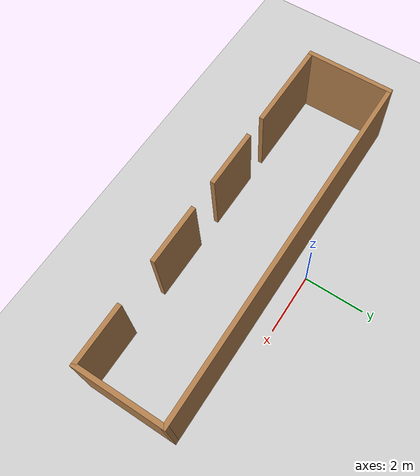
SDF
<sdf version="1.6">
 <world name="default">
  <light name="sun" type="directional">
   <pose>0 0 10 0 -0 0</pose>
   <diffuse>0.8 0.8 0.8 1</diffuse>
   <specular>0.2 0.2 0.2 1</specular>
   <attenuation>
    <range>1000</range>
    <constant>0.9</constant>
    <linear>0.01</linear>
    <quadratic>0.001</quadratic>
   </attenuation>
   <direction>-0.5 0.1 -0.9</direction>
  </light>
  <model name="ground_plane">
   <static>1</static>
   <link name="link">
    <collision name="collision">
     <geometry><plane><normal>0 0 1</normal><size>100 100</size></plane></geometry>
     <surface>
      <contact><collide_bitmask>65535</collide_bitmask></contact>
      <friction><ode><mu>100</mu><mu2>50</mu2></ode></friction>
     </surface>
    </collision>
    <visual name="visual">
     <cast_shadows>0</cast_shadows>
     <geometry><plane><normal>0 0 1</normal><size>100 100</size></plane></geometry>
     <material>
      <script><uri>file://media/materials/scripts/gazebo.material</uri><name>Gazebo/Grey</name></script>
     </material>
    </visual>
   </link>
  </model>
  <gravity>0 0 -9.8</gravity>
  <magnetic_field>6e-06 2.3e-05 -4.2e-05</magnetic_field>
  <atmosphere type="adiabatic"/>
  <physics name="default_physics" default="0" type="ode">
   <max_step_size>0.001</max_step_size>
   <real_time_factor>1</real_time_factor>
   <real_time_update_rate>1000</real_time_update_rate>
  </physics>
  <scene><ambient>0.4 0.4 0.4 1</ambient><background>0.7 0.7 0.7 1</background><shadows>1</shadows></scene>
  <audio><device>default</device></audio>
  <spherical_coordinates>
   <surface_model>EARTH_WGS84</surface_model>
   <latitude_deg>0</latitude_deg>
   <longitude_deg>0</longitude_deg>
   <elevation>0</elevation>
   <heading_deg>0</heading_deg>
  </spherical_coordinates>
  <model name="holes">
   <pose>0.096213 -2.05922 0 0 -0 0</pose>
   <link name="Wall_27">
    <collision name="Wall_27_Collision">
     <geometry><box><size>3 0.15 2.5</size></box></geometry>
     <pose>0 0 1.25 0 -0 0</pose>
    </collision>
    <visual name="Wall_27_Visual">
     <pose>0 0 1.25 0 -0 0</pose>
     <geometry><box><size>3 0.15 2.5</size></box></geometry>
     <material>
      <script><uri>file://media/materials/scripts/gazebo.material</uri><name>Gazebo/Wood</name></script>
      <ambient>1 1 1 1</ambient>
     </material>
     <meta><layer>0</layer></meta>
    </visual>
    <pose>-4.475 -1.425 0 0 -0 0</pose>
   </link>
   <link name="Wall_29">
    <collision name="Wall_29_Collision">
     <geometry><box><size>2 0.15 2.5</size></box></geometry>
     <pose>0 0 1.25 0 -0 0</pose>
    </collision>
    <visual name="Wall_29_Visual">
     <pose>0 0 1.25 0 -0 0</pose>
     <geometry><box><size>2 0.15 2.5</size></box></geometry>
     <material>
      <script><uri>file://media/materials/scripts/gazebo.material</uri><name>Gazebo/Wood</name></script>
      <ambient>1 1 1 1</ambient>
     </material>
     <meta><layer>0</layer></meta>
    </visual>
    <pose>-1.275 -1.425 0 0 -0 0</pose>
   </link>
   <link name="Wall_31">
    <collision name="Wall_31_Collision">
     <geometry><box><size>2 0.15 2.5</size></box></geometry>
     <pose>0 0 1.25 0 -0 0</pose>
    </collision>
    <visual name="Wall_31_Visual">
     <pose>0 0 1.25 0 -0 0</pose>
     <geometry><box><size>2 0.15 2.5</size></box></geometry>
     <material>
      <script><uri>file://media/materials/scripts/gazebo.material</uri><name>Gazebo/Wood</name></script>
      <ambient>1 1 1 1</ambient>
     </material>
     <meta><layer>0</layer></meta>
    </visual>
    <pose>1.675 -1.425 0 0 -0 0</pose>
   </link>
   <link name="Wall_33">
    <collision name="Wall_33_Collision">
     <geometry><box><size>2 0.15 2.5</size></box></geometry>
     <pose>0 0 1.25 0 -0 0</pose>
    </collision>
    <visual name="Wall_33_Visual">
     <pose>0 0 1.25 0 -0 0</pose>
     <geometry><box><size>2 0.15 2.5</size></box></geometry>
     <material>
      <script><uri>file://media/materials/scripts/gazebo.material</uri><name>Gazebo/Wood</name></script>
      <ambient>1 1 1 1</ambient>
     </material>
     <meta><layer>0</layer></meta>
    </visual>
    <pose>5.125 -1.425 0 0 -0 0</pose>
   </link>
   <link name="Wall_34">
    <collision name="Wall_34_Collision">
     <geometry><box><size>3 0.15 2.5</size></box></geometry>
     <pose>0 0 1.25 0 -0 0</pose>
    </collision>
    <visual name="Wall_34_Visual">
     <pose>0 0 1.25 0 -0 0</pose>
     <geometry><box><size>3 0.15 2.5</size></box></geometry>
     <material>
      <script><uri>file://media/materials/scripts/gazebo.material</uri><name>Gazebo/Wood</name></script>
      <ambient>1 1 1 1</ambient>
     </material>
     <meta><layer>0</layer></meta>
    </visual>
    <pose>6.05 0 0 0 -0 1.5708</pose>
   </link>
   <link name="Wall_35">
    <collision name="Wall_35_Collision">
     <geometry><box><size>12.25 0.15 2.5</size></box></geometry>
     <pose>0 0 1.25 0 -0 0</pose>
    </collision>
    <visual name="Wall_35_Visual">
     <pose>0 0 1.25 0 -0 0</pose>
     <geometry><box><size>12.25 0.15 2.5</size></box></geometry>
     <material>
      <script><uri>file://media/materials/scripts/gazebo.material</uri><name>Gazebo/Wood</name></script>
      <ambient>1 1 1 1</ambient>
     </material>
     <meta><layer>0</layer></meta>
    </visual>
    <pose>-0 1.425 0 0 -0 3.14159</pose>
   </link>
   <link name="Wall_36">
    <collision name="Wall_36_Collision">
     <geometry><box><size>3 0.15 2.5</size></box></geometry>
     <pose>0 0 1.25 0 -0 0</pose>
    </collision>
    <visual name="Wall_36_Visual">
     <pose>0 0 1.25 0 -0 0</pose>
     <geometry><box><size>3 0.15 2.5</size></box></geometry>
     <material>
      <script><uri>file://media/materials/scripts/gazebo.material</uri><name>Gazebo/Wood</name></script>
      <ambient>1 1 1 1</ambient>
     </material>
     <meta><layer>0</layer></meta>
    </visual>
    <pose>-6.05 0 0 0 -0 -1.5708</pose>
   </link>
   <static>1</static>
  </model>
 </world>
</sdf>
